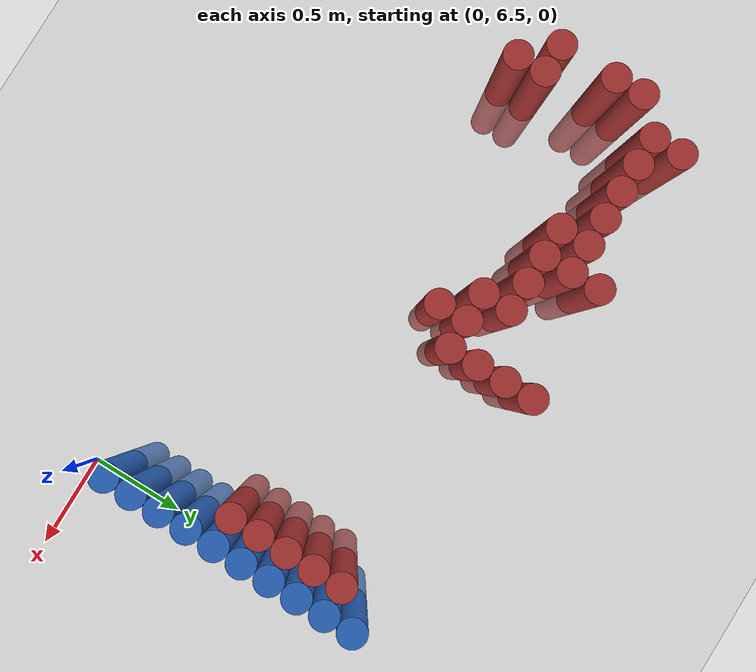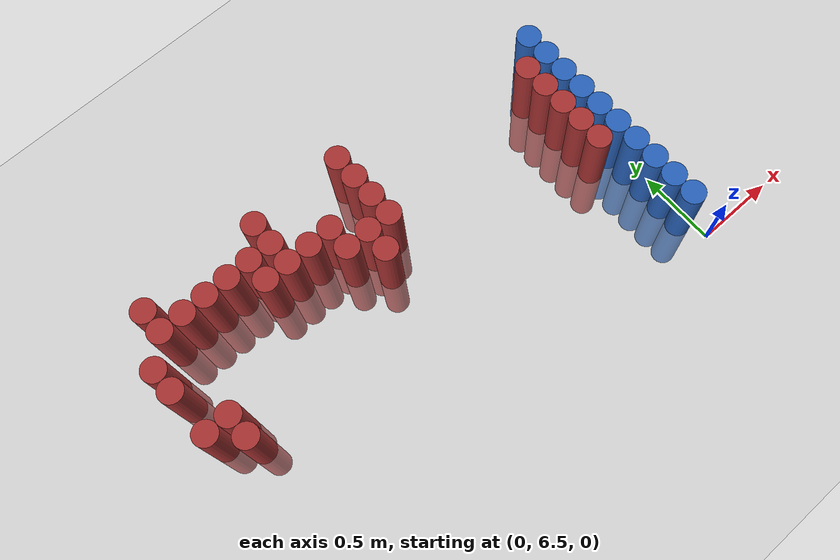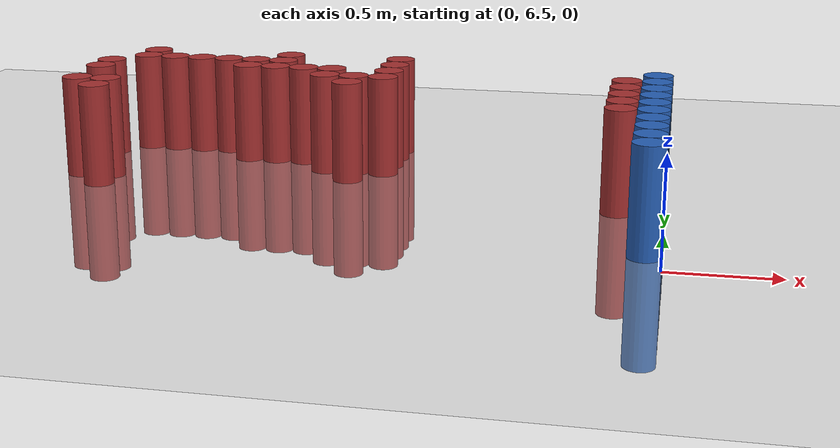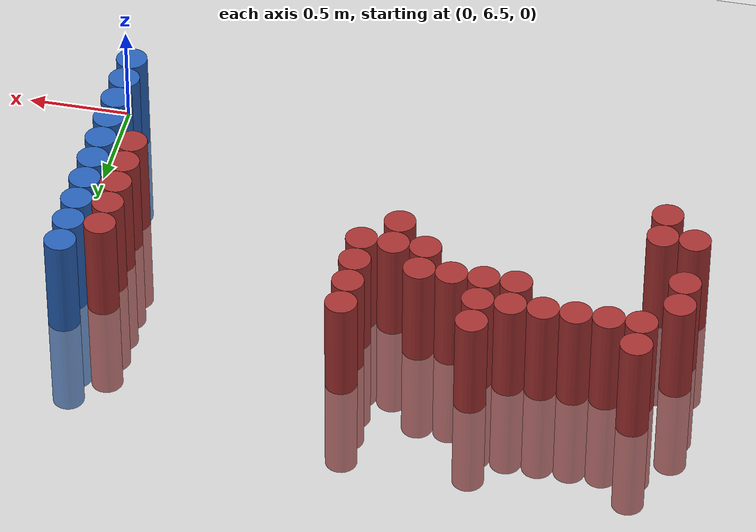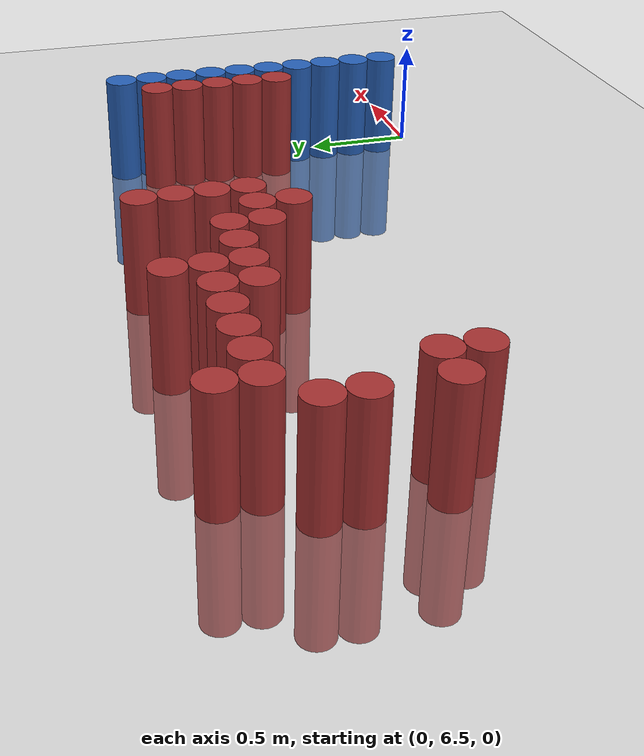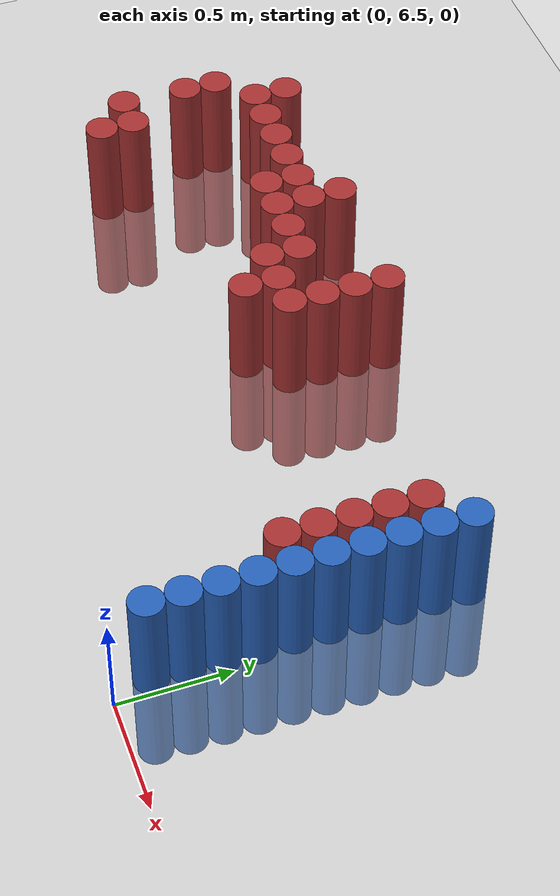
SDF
<sdf version="1.6">
 <world name="default">
  <model name="ground_plane">
   <static>1</static>
   <link name="link">
    <collision name="collision">
     <geometry><plane><normal>0 0 1</normal><size>100 100</size></plane></geometry>
     <surface><friction><ode><mu>100</mu><mu2>50</mu2></ode></friction></surface>
    </collision>
    <visual name="visual">
     <cast_shadows>0</cast_shadows>
     <geometry><plane><normal>0 0 1</normal><size>100 100</size></plane></geometry>
     <material>
      <script><uri>file://media/materials/scripts/gazebo.material</uri><name>Gazebo/Grey</name></script>
     </material>
    </visual>
   </link>
  </model>
  <model name="unit_cylinder_197">
   <static>1</static>
   <pose>-2.925000 7.425000 0.000000 0.000000 0.000000 0.000000</pose>
   <link name="link">
    <inertial>
     <mass>1</mass>
     <inertia><ixx>0.145833</ixx><ixy>0</ixy><ixz>0</ixz><iyy>0.145833</iyy><iyz>0</iyz><izz>0.125</izz></inertia>
    </inertial>
    <collision name="collision">
     <geometry><cylinder><radius>0.075000</radius><length>1</length></cylinder></geometry>
    </collision>
    <visual name="visual">
     <geometry><cylinder><radius>0.075000</radius><length>1</length></cylinder></geometry>
     <material>
      <ambient>0.648000 0.192000 0.192000 1</ambient>
      <diffuse>0.648000 0.192000 0.192000 1</diffuse>
     </material>
     <material>
      <script><name>Gazebo/Grey</name><uri>file://media/materials/scripts/gazebo.material</uri></script>
     </material>
    </visual>
    <sensor name="sensor_contact" type="contact"><contact><collision>collision</collision></contact></sensor>
   </link>
   <plugin filename="gz-sim-touchplugin-system" name="gz::sim::systems::TouchPlugin">
    <target>robot</target>
    <namespace>robot</namespace>
    <time>0.001</time>
    <enabled>true</enabled>
   </plugin>
  </model>
  <model name="unit_cylinder_198">
   <static>1</static>
   <pose>-2.925000 7.725000 0.000000 0.000000 0.000000 0.000000</pose>
   <link name="link">
    <inertial>
     <mass>1</mass>
     <inertia><ixx>0.145833</ixx><ixy>0</ixy><ixz>0</ixz><iyy>0.145833</iyy><iyz>0</iyz><izz>0.125</izz></inertia>
    </inertial>
    <collision name="collision">
     <geometry><cylinder><radius>0.075000</radius><length>1</length></cylinder></geometry>
    </collision>
    <visual name="visual">
     <geometry><cylinder><radius>0.075000</radius><length>1</length></cylinder></geometry>
     <material>
      <ambient>0.648000 0.192000 0.192000 1</ambient>
      <diffuse>0.648000 0.192000 0.192000 1</diffuse>
     </material>
     <material>
      <script><name>Gazebo/Grey</name><uri>file://media/materials/scripts/gazebo.material</uri></script>
     </material>
    </visual>
    <sensor name="sensor_contact" type="contact"><contact><collision>collision</collision></contact></sensor>
   </link>
   <plugin filename="gz-sim-touchplugin-system" name="gz::sim::systems::TouchPlugin">
    <target>robot</target>
    <namespace>robot</namespace>
    <time>0.001</time>
    <enabled>true</enabled>
   </plugin>
  </model>
  <model name="unit_cylinder_199">
   <static>1</static>
   <pose>-2.925000 7.875000 0.000000 0.000000 0.000000 0.000000</pose>
   <link name="link">
    <inertial>
     <mass>1</mass>
     <inertia><ixx>0.145833</ixx><ixy>0</ixy><ixz>0</ixz><iyy>0.145833</iyy><iyz>0</iyz><izz>0.125</izz></inertia>
    </inertial>
    <collision name="collision">
     <geometry><cylinder><radius>0.075000</radius><length>1</length></cylinder></geometry>
    </collision>
    <visual name="visual">
     <geometry><cylinder><radius>0.075000</radius><length>1</length></cylinder></geometry>
     <material>
      <ambient>0.648000 0.192000 0.192000 1</ambient>
      <diffuse>0.648000 0.192000 0.192000 1</diffuse>
     </material>
     <material>
      <script><name>Gazebo/Grey</name><uri>file://media/materials/scripts/gazebo.material</uri></script>
     </material>
    </visual>
    <sensor name="sensor_contact" type="contact"><contact><collision>collision</collision></contact></sensor>
   </link>
   <plugin filename="gz-sim-touchplugin-system" name="gz::sim::systems::TouchPlugin">
    <target>robot</target>
    <namespace>robot</namespace>
    <time>0.001</time>
    <enabled>true</enabled>
   </plugin>
  </model>
  <model name="unit_cylinder_201">
   <static>1</static>
   <pose>-2.775000 7.275000 0.000000 0.000000 0.000000 0.000000</pose>
   <link name="link">
    <inertial>
     <mass>1</mass>
     <inertia><ixx>0.145833</ixx><ixy>0</ixy><ixz>0</ixz><iyy>0.145833</iyy><iyz>0</iyz><izz>0.125</izz></inertia>
    </inertial>
    <collision name="collision">
     <geometry><cylinder><radius>0.075000</radius><length>1</length></cylinder></geometry>
    </collision>
    <visual name="visual">
     <geometry><cylinder><radius>0.075000</radius><length>1</length></cylinder></geometry>
     <material>
      <ambient>0.648000 0.192000 0.192000 1</ambient>
      <diffuse>0.648000 0.192000 0.192000 1</diffuse>
     </material>
     <material>
      <script><name>Gazebo/Grey</name><uri>file://media/materials/scripts/gazebo.material</uri></script>
     </material>
    </visual>
    <sensor name="sensor_contact" type="contact"><contact><collision>collision</collision></contact></sensor>
   </link>
   <plugin filename="gz-sim-touchplugin-system" name="gz::sim::systems::TouchPlugin">
    <target>robot</target>
    <namespace>robot</namespace>
    <time>0.001</time>
    <enabled>true</enabled>
   </plugin>
  </model>
  <model name="unit_cylinder_202">
   <static>1</static>
   <pose>-2.775000 7.425000 0.000000 0.000000 0.000000 0.000000</pose>
   <link name="link">
    <inertial>
     <mass>1</mass>
     <inertia><ixx>0.145833</ixx><ixy>0</ixy><ixz>0</ixz><iyy>0.145833</iyy><iyz>0</iyz><izz>0.125</izz></inertia>
    </inertial>
    <collision name="collision">
     <geometry><cylinder><radius>0.075000</radius><length>1</length></cylinder></geometry>
    </collision>
    <visual name="visual">
     <geometry><cylinder><radius>0.075000</radius><length>1</length></cylinder></geometry>
     <material>
      <ambient>0.648000 0.192000 0.192000 1</ambient>
      <diffuse>0.648000 0.192000 0.192000 1</diffuse>
     </material>
     <material>
      <script><name>Gazebo/Grey</name><uri>file://media/materials/scripts/gazebo.material</uri></script>
     </material>
    </visual>
    <sensor name="sensor_contact" type="contact"><contact><collision>collision</collision></contact></sensor>
   </link>
   <plugin filename="gz-sim-touchplugin-system" name="gz::sim::systems::TouchPlugin">
    <target>robot</target>
    <namespace>robot</namespace>
    <time>0.001</time>
    <enabled>true</enabled>
   </plugin>
  </model>
  <model name="unit_cylinder_203">
   <static>1</static>
   <pose>-2.775000 8.025000 0.000000 0.000000 0.000000 0.000000</pose>
   <link name="link">
    <inertial>
     <mass>1</mass>
     <inertia><ixx>0.145833</ixx><ixy>0</ixy><ixz>0</ixz><iyy>0.145833</iyy><iyz>0</iyz><izz>0.125</izz></inertia>
    </inertial>
    <collision name="collision">
     <geometry><cylinder><radius>0.075000</radius><length>1</length></cylinder></geometry>
    </collision>
    <visual name="visual">
     <geometry><cylinder><radius>0.075000</radius><length>1</length></cylinder></geometry>
     <material>
      <ambient>0.648000 0.192000 0.192000 1</ambient>
      <diffuse>0.648000 0.192000 0.192000 1</diffuse>
     </material>
     <material>
      <script><name>Gazebo/Grey</name><uri>file://media/materials/scripts/gazebo.material</uri></script>
     </material>
    </visual>
    <sensor name="sensor_contact" type="contact"><contact><collision>collision</collision></contact></sensor>
   </link>
   <plugin filename="gz-sim-touchplugin-system" name="gz::sim::systems::TouchPlugin">
    <target>robot</target>
    <namespace>robot</namespace>
    <time>0.001</time>
    <enabled>true</enabled>
   </plugin>
  </model>
  <model name="unit_cylinder_204">
   <static>1</static>
   <pose>-2.775000 8.175000 0.000000 0.000000 0.000000 0.000000</pose>
   <link name="link">
    <inertial>
     <mass>1</mass>
     <inertia><ixx>0.145833</ixx><ixy>0</ixy><ixz>0</ixz><iyy>0.145833</iyy><iyz>0</iyz><izz>0.125</izz></inertia>
    </inertial>
    <collision name="collision">
     <geometry><cylinder><radius>0.075000</radius><length>1</length></cylinder></geometry>
    </collision>
    <visual name="visual">
     <geometry><cylinder><radius>0.075000</radius><length>1</length></cylinder></geometry>
     <material>
      <ambient>0.648000 0.192000 0.192000 1</ambient>
      <diffuse>0.648000 0.192000 0.192000 1</diffuse>
     </material>
     <material>
      <script><name>Gazebo/Grey</name><uri>file://media/materials/scripts/gazebo.material</uri></script>
     </material>
    </visual>
    <sensor name="sensor_contact" type="contact"><contact><collision>collision</collision></contact></sensor>
   </link>
   <plugin filename="gz-sim-touchplugin-system" name="gz::sim::systems::TouchPlugin">
    <target>robot</target>
    <namespace>robot</namespace>
    <time>0.001</time>
    <enabled>true</enabled>
   </plugin>
  </model>
  <model name="unit_cylinder_210">
   <static>1</static>
   <pose>-2.625000 8.025000 0.000000 0.000000 0.000000 0.000000</pose>
   <link name="link">
    <inertial>
     <mass>1</mass>
     <inertia><ixx>0.145833</ixx><ixy>0</ixy><ixz>0</ixz><iyy>0.145833</iyy><iyz>0</iyz><izz>0.125</izz></inertia>
    </inertial>
    <collision name="collision">
     <geometry><cylinder><radius>0.075000</radius><length>1</length></cylinder></geometry>
    </collision>
    <visual name="visual">
     <geometry><cylinder><radius>0.075000</radius><length>1</length></cylinder></geometry>
     <material>
      <ambient>0.648000 0.192000 0.192000 1</ambient>
      <diffuse>0.648000 0.192000 0.192000 1</diffuse>
     </material>
     <material>
      <script><name>Gazebo/Grey</name><uri>file://media/materials/scripts/gazebo.material</uri></script>
     </material>
    </visual>
    <sensor name="sensor_contact" type="contact"><contact><collision>collision</collision></contact></sensor>
   </link>
   <plugin filename="gz-sim-touchplugin-system" name="gz::sim::systems::TouchPlugin">
    <target>robot</target>
    <namespace>robot</namespace>
    <time>0.001</time>
    <enabled>true</enabled>
   </plugin>
  </model>
  <model name="unit_cylinder_221">
   <static>1</static>
   <pose>-2.475000 8.025000 0.000000 0.000000 0.000000 0.000000</pose>
   <link name="link">
    <inertial>
     <mass>1</mass>
     <inertia><ixx>0.145833</ixx><ixy>0</ixy><ixz>0</ixz><iyy>0.145833</iyy><iyz>0</iyz><izz>0.125</izz></inertia>
    </inertial>
    <collision name="collision">
     <geometry><cylinder><radius>0.075000</radius><length>1</length></cylinder></geometry>
    </collision>
    <visual name="visual">
     <geometry><cylinder><radius>0.075000</radius><length>1</length></cylinder></geometry>
     <material>
      <ambient>0.648000 0.192000 0.192000 1</ambient>
      <diffuse>0.648000 0.192000 0.192000 1</diffuse>
     </material>
     <material>
      <script><name>Gazebo/Grey</name><uri>file://media/materials/scripts/gazebo.material</uri></script>
     </material>
    </visual>
    <sensor name="sensor_contact" type="contact"><contact><collision>collision</collision></contact></sensor>
   </link>
   <plugin filename="gz-sim-touchplugin-system" name="gz::sim::systems::TouchPlugin">
    <target>robot</target>
    <namespace>robot</namespace>
    <time>0.001</time>
    <enabled>true</enabled>
   </plugin>
  </model>
  <model name="unit_cylinder_229">
   <static>1</static>
   <pose>-2.325000 8.025000 0.000000 0.000000 0.000000 0.000000</pose>
   <link name="link">
    <inertial>
     <mass>1</mass>
     <inertia><ixx>0.145833</ixx><ixy>0</ixy><ixz>0</ixz><iyy>0.145833</iyy><iyz>0</iyz><izz>0.125</izz></inertia>
    </inertial>
    <collision name="collision">
     <geometry><cylinder><radius>0.075000</radius><length>1</length></cylinder></geometry>
    </collision>
    <visual name="visual">
     <geometry><cylinder><radius>0.075000</radius><length>1</length></cylinder></geometry>
     <material>
      <ambient>0.648000 0.192000 0.192000 1</ambient>
      <diffuse>0.648000 0.192000 0.192000 1</diffuse>
     </material>
     <material>
      <script><name>Gazebo/Grey</name><uri>file://media/materials/scripts/gazebo.material</uri></script>
     </material>
    </visual>
    <sensor name="sensor_contact" type="contact"><contact><collision>collision</collision></contact></sensor>
   </link>
   <plugin filename="gz-sim-touchplugin-system" name="gz::sim::systems::TouchPlugin">
    <target>robot</target>
    <namespace>robot</namespace>
    <time>0.001</time>
    <enabled>true</enabled>
   </plugin>
  </model>
  <model name="unit_cylinder_236">
   <static>1</static>
   <pose>-2.175000 7.875000 0.000000 0.000000 0.000000 0.000000</pose>
   <link name="link">
    <inertial>
     <mass>1</mass>
     <inertia><ixx>0.145833</ixx><ixy>0</ixy><ixz>0</ixz><iyy>0.145833</iyy><iyz>0</iyz><izz>0.125</izz></inertia>
    </inertial>
    <collision name="collision">
     <geometry><cylinder><radius>0.075000</radius><length>1</length></cylinder></geometry>
    </collision>
    <visual name="visual">
     <geometry><cylinder><radius>0.075000</radius><length>1</length></cylinder></geometry>
     <material>
      <ambient>0.648000 0.192000 0.192000 1</ambient>
      <diffuse>0.648000 0.192000 0.192000 1</diffuse>
     </material>
     <material>
      <script><name>Gazebo/Grey</name><uri>file://media/materials/scripts/gazebo.material</uri></script>
     </material>
    </visual>
    <sensor name="sensor_contact" type="contact"><contact><collision>collision</collision></contact></sensor>
   </link>
   <plugin filename="gz-sim-touchplugin-system" name="gz::sim::systems::TouchPlugin">
    <target>robot</target>
    <namespace>robot</namespace>
    <time>0.001</time>
    <enabled>true</enabled>
   </plugin>
  </model>
  <model name="unit_cylinder_237">
   <static>1</static>
   <pose>-2.175000 8.025000 0.000000 0.000000 0.000000 0.000000</pose>
   <link name="link">
    <inertial>
     <mass>1</mass>
     <inertia><ixx>0.145833</ixx><ixy>0</ixy><ixz>0</ixz><iyy>0.145833</iyy><iyz>0</iyz><izz>0.125</izz></inertia>
    </inertial>
    <collision name="collision">
     <geometry><cylinder><radius>0.075000</radius><length>1</length></cylinder></geometry>
    </collision>
    <visual name="visual">
     <geometry><cylinder><radius>0.075000</radius><length>1</length></cylinder></geometry>
     <material>
      <ambient>0.648000 0.192000 0.192000 1</ambient>
      <diffuse>0.648000 0.192000 0.192000 1</diffuse>
     </material>
     <material>
      <script><name>Gazebo/Grey</name><uri>file://media/materials/scripts/gazebo.material</uri></script>
     </material>
    </visual>
    <sensor name="sensor_contact" type="contact"><contact><collision>collision</collision></contact></sensor>
   </link>
   <plugin filename="gz-sim-touchplugin-system" name="gz::sim::systems::TouchPlugin">
    <target>robot</target>
    <namespace>robot</namespace>
    <time>0.001</time>
    <enabled>true</enabled>
   </plugin>
  </model>
  <model name="unit_cylinder_241">
   <static>1</static>
   <pose>-2.025000 7.875000 0.000000 0.000000 0.000000 0.000000</pose>
   <link name="link">
    <inertial>
     <mass>1</mass>
     <inertia><ixx>0.145833</ixx><ixy>0</ixy><ixz>0</ixz><iyy>0.145833</iyy><iyz>0</iyz><izz>0.125</izz></inertia>
    </inertial>
    <collision name="collision">
     <geometry><cylinder><radius>0.075000</radius><length>1</length></cylinder></geometry>
    </collision>
    <visual name="visual">
     <geometry><cylinder><radius>0.075000</radius><length>1</length></cylinder></geometry>
     <material>
      <ambient>0.648000 0.192000 0.192000 1</ambient>
      <diffuse>0.648000 0.192000 0.192000 1</diffuse>
     </material>
     <material>
      <script><name>Gazebo/Grey</name><uri>file://media/materials/scripts/gazebo.material</uri></script>
     </material>
    </visual>
    <sensor name="sensor_contact" type="contact"><contact><collision>collision</collision></contact></sensor>
   </link>
   <plugin filename="gz-sim-touchplugin-system" name="gz::sim::systems::TouchPlugin">
    <target>robot</target>
    <namespace>robot</namespace>
    <time>0.001</time>
    <enabled>true</enabled>
   </plugin>
  </model>
  <model name="unit_cylinder_242">
   <static>1</static>
   <pose>-2.025000 8.025000 0.000000 0.000000 0.000000 0.000000</pose>
   <link name="link">
    <inertial>
     <mass>1</mass>
     <inertia><ixx>0.145833</ixx><ixy>0</ixy><ixz>0</ixz><iyy>0.145833</iyy><iyz>0</iyz><izz>0.125</izz></inertia>
    </inertial>
    <collision name="collision">
     <geometry><cylinder><radius>0.075000</radius><length>1</length></cylinder></geometry>
    </collision>
    <visual name="visual">
     <geometry><cylinder><radius>0.075000</radius><length>1</length></cylinder></geometry>
     <material>
      <ambient>0.648000 0.192000 0.192000 1</ambient>
      <diffuse>0.648000 0.192000 0.192000 1</diffuse>
     </material>
     <material>
      <script><name>Gazebo/Grey</name><uri>file://media/materials/scripts/gazebo.material</uri></script>
     </material>
    </visual>
    <sensor name="sensor_contact" type="contact"><contact><collision>collision</collision></contact></sensor>
   </link>
   <plugin filename="gz-sim-touchplugin-system" name="gz::sim::systems::TouchPlugin">
    <target>robot</target>
    <namespace>robot</namespace>
    <time>0.001</time>
    <enabled>true</enabled>
   </plugin>
  </model>
  <model name="unit_cylinder_243">
   <static>1</static>
   <pose>-2.025000 8.175000 0.000000 0.000000 0.000000 0.000000</pose>
   <link name="link">
    <inertial>
     <mass>1</mass>
     <inertia><ixx>0.145833</ixx><ixy>0</ixy><ixz>0</ixz><iyy>0.145833</iyy><iyz>0</iyz><izz>0.125</izz></inertia>
    </inertial>
    <collision name="collision">
     <geometry><cylinder><radius>0.075000</radius><length>1</length></cylinder></geometry>
    </collision>
    <visual name="visual">
     <geometry><cylinder><radius>0.075000</radius><length>1</length></cylinder></geometry>
     <material>
      <ambient>0.648000 0.192000 0.192000 1</ambient>
      <diffuse>0.648000 0.192000 0.192000 1</diffuse>
     </material>
     <material>
      <script><name>Gazebo/Grey</name><uri>file://media/materials/scripts/gazebo.material</uri></script>
     </material>
    </visual>
    <sensor name="sensor_contact" type="contact"><contact><collision>collision</collision></contact></sensor>
   </link>
   <plugin filename="gz-sim-touchplugin-system" name="gz::sim::systems::TouchPlugin">
    <target>robot</target>
    <namespace>robot</namespace>
    <time>0.001</time>
    <enabled>true</enabled>
   </plugin>
  </model>
  <model name="unit_cylinder_246">
   <static>1</static>
   <pose>-1.875000 7.875000 0.000000 0.000000 0.000000 0.000000</pose>
   <link name="link">
    <inertial>
     <mass>1</mass>
     <inertia><ixx>0.145833</ixx><ixy>0</ixy><ixz>0</ixz><iyy>0.145833</iyy><iyz>0</iyz><izz>0.125</izz></inertia>
    </inertial>
    <collision name="collision">
     <geometry><cylinder><radius>0.075000</radius><length>1</length></cylinder></geometry>
    </collision>
    <visual name="visual">
     <geometry><cylinder><radius>0.075000</radius><length>1</length></cylinder></geometry>
     <material>
      <ambient>0.648000 0.192000 0.192000 1</ambient>
      <diffuse>0.648000 0.192000 0.192000 1</diffuse>
     </material>
     <material>
      <script><name>Gazebo/Grey</name><uri>file://media/materials/scripts/gazebo.material</uri></script>
     </material>
    </visual>
    <sensor name="sensor_contact" type="contact"><contact><collision>collision</collision></contact></sensor>
   </link>
   <plugin filename="gz-sim-touchplugin-system" name="gz::sim::systems::TouchPlugin">
    <target>robot</target>
    <namespace>robot</namespace>
    <time>0.001</time>
    <enabled>true</enabled>
   </plugin>
  </model>
  <model name="unit_cylinder_249">
   <static>1</static>
   <pose>-1.725000 7.725000 0.000000 0.000000 0.000000 0.000000</pose>
   <link name="link">
    <inertial>
     <mass>1</mass>
     <inertia><ixx>0.145833</ixx><ixy>0</ixy><ixz>0</ixz><iyy>0.145833</iyy><iyz>0</iyz><izz>0.125</izz></inertia>
    </inertial>
    <collision name="collision">
     <geometry><cylinder><radius>0.075000</radius><length>1</length></cylinder></geometry>
    </collision>
    <visual name="visual">
     <geometry><cylinder><radius>0.075000</radius><length>1</length></cylinder></geometry>
     <material>
      <ambient>0.648000 0.192000 0.192000 1</ambient>
      <diffuse>0.648000 0.192000 0.192000 1</diffuse>
     </material>
     <material>
      <script><name>Gazebo/Grey</name><uri>file://media/materials/scripts/gazebo.material</uri></script>
     </material>
    </visual>
    <sensor name="sensor_contact" type="contact"><contact><collision>collision</collision></contact></sensor>
   </link>
   <plugin filename="gz-sim-touchplugin-system" name="gz::sim::systems::TouchPlugin">
    <target>robot</target>
    <namespace>robot</namespace>
    <time>0.001</time>
    <enabled>true</enabled>
   </plugin>
  </model>
  <model name="unit_cylinder_250">
   <static>1</static>
   <pose>-1.725000 7.875000 0.000000 0.000000 0.000000 0.000000</pose>
   <link name="link">
    <inertial>
     <mass>1</mass>
     <inertia><ixx>0.145833</ixx><ixy>0</ixy><ixz>0</ixz><iyy>0.145833</iyy><iyz>0</iyz><izz>0.125</izz></inertia>
    </inertial>
    <collision name="collision">
     <geometry><cylinder><radius>0.075000</radius><length>1</length></cylinder></geometry>
    </collision>
    <visual name="visual">
     <geometry><cylinder><radius>0.075000</radius><length>1</length></cylinder></geometry>
     <material>
      <ambient>0.648000 0.192000 0.192000 1</ambient>
      <diffuse>0.648000 0.192000 0.192000 1</diffuse>
     </material>
     <material>
      <script><name>Gazebo/Grey</name><uri>file://media/materials/scripts/gazebo.material</uri></script>
     </material>
    </visual>
    <sensor name="sensor_contact" type="contact"><contact><collision>collision</collision></contact></sensor>
   </link>
   <plugin filename="gz-sim-touchplugin-system" name="gz::sim::systems::TouchPlugin">
    <target>robot</target>
    <namespace>robot</namespace>
    <time>0.001</time>
    <enabled>true</enabled>
   </plugin>
  </model>
  <model name="unit_cylinder_252">
   <static>1</static>
   <pose>-1.575000 7.575000 0.000000 0.000000 0.000000 0.000000</pose>
   <link name="link">
    <inertial>
     <mass>1</mass>
     <inertia><ixx>0.145833</ixx><ixy>0</ixy><ixz>0</ixz><iyy>0.145833</iyy><iyz>0</iyz><izz>0.125</izz></inertia>
    </inertial>
    <collision name="collision">
     <geometry><cylinder><radius>0.075000</radius><length>1</length></cylinder></geometry>
    </collision>
    <visual name="visual">
     <geometry><cylinder><radius>0.075000</radius><length>1</length></cylinder></geometry>
     <material>
      <ambient>0.648000 0.192000 0.192000 1</ambient>
      <diffuse>0.648000 0.192000 0.192000 1</diffuse>
     </material>
     <material>
      <script><name>Gazebo/Grey</name><uri>file://media/materials/scripts/gazebo.material</uri></script>
     </material>
    </visual>
    <sensor name="sensor_contact" type="contact"><contact><collision>collision</collision></contact></sensor>
   </link>
   <plugin filename="gz-sim-touchplugin-system" name="gz::sim::systems::TouchPlugin">
    <target>robot</target>
    <namespace>robot</namespace>
    <time>0.001</time>
    <enabled>true</enabled>
   </plugin>
  </model>
  <model name="unit_cylinder_253">
   <static>1</static>
   <pose>-1.575000 7.725000 0.000000 0.000000 0.000000 0.000000</pose>
   <link name="link">
    <inertial>
     <mass>1</mass>
     <inertia><ixx>0.145833</ixx><ixy>0</ixy><ixz>0</ixz><iyy>0.145833</iyy><iyz>0</iyz><izz>0.125</izz></inertia>
    </inertial>
    <collision name="collision">
     <geometry><cylinder><radius>0.075000</radius><length>1</length></cylinder></geometry>
    </collision>
    <visual name="visual">
     <geometry><cylinder><radius>0.075000</radius><length>1</length></cylinder></geometry>
     <material>
      <ambient>0.648000 0.192000 0.192000 1</ambient>
      <diffuse>0.648000 0.192000 0.192000 1</diffuse>
     </material>
     <material>
      <script><name>Gazebo/Grey</name><uri>file://media/materials/scripts/gazebo.material</uri></script>
     </material>
    </visual>
    <sensor name="sensor_contact" type="contact"><contact><collision>collision</collision></contact></sensor>
   </link>
   <plugin filename="gz-sim-touchplugin-system" name="gz::sim::systems::TouchPlugin">
    <target>robot</target>
    <namespace>robot</namespace>
    <time>0.001</time>
    <enabled>true</enabled>
   </plugin>
  </model>
  <model name="unit_cylinder_255">
   <static>1</static>
   <pose>-1.425000 7.725000 0.000000 0.000000 0.000000 0.000000</pose>
   <link name="link">
    <inertial>
     <mass>1</mass>
     <inertia><ixx>0.145833</ixx><ixy>0</ixy><ixz>0</ixz><iyy>0.145833</iyy><iyz>0</iyz><izz>0.125</izz></inertia>
    </inertial>
    <collision name="collision">
     <geometry><cylinder><radius>0.075000</radius><length>1</length></cylinder></geometry>
    </collision>
    <visual name="visual">
     <geometry><cylinder><radius>0.075000</radius><length>1</length></cylinder></geometry>
     <material>
      <ambient>0.648000 0.192000 0.192000 1</ambient>
      <diffuse>0.648000 0.192000 0.192000 1</diffuse>
     </material>
     <material>
      <script><name>Gazebo/Grey</name><uri>file://media/materials/scripts/gazebo.material</uri></script>
     </material>
    </visual>
    <sensor name="sensor_contact" type="contact"><contact><collision>collision</collision></contact></sensor>
   </link>
   <plugin filename="gz-sim-touchplugin-system" name="gz::sim::systems::TouchPlugin">
    <target>robot</target>
    <namespace>robot</namespace>
    <time>0.001</time>
    <enabled>true</enabled>
   </plugin>
  </model>
  <model name="unit_cylinder_256">
   <static>1</static>
   <pose>-1.425000 7.875000 0.000000 0.000000 0.000000 0.000000</pose>
   <link name="link">
    <inertial>
     <mass>1</mass>
     <inertia><ixx>0.145833</ixx><ixy>0</ixy><ixz>0</ixz><iyy>0.145833</iyy><iyz>0</iyz><izz>0.125</izz></inertia>
    </inertial>
    <collision name="collision">
     <geometry><cylinder><radius>0.075000</radius><length>1</length></cylinder></geometry>
    </collision>
    <visual name="visual">
     <geometry><cylinder><radius>0.075000</radius><length>1</length></cylinder></geometry>
     <material>
      <ambient>0.648000 0.192000 0.192000 1</ambient>
      <diffuse>0.648000 0.192000 0.192000 1</diffuse>
     </material>
     <material>
      <script><name>Gazebo/Grey</name><uri>file://media/materials/scripts/gazebo.material</uri></script>
     </material>
    </visual>
    <sensor name="sensor_contact" type="contact"><contact><collision>collision</collision></contact></sensor>
   </link>
   <plugin filename="gz-sim-touchplugin-system" name="gz::sim::systems::TouchPlugin">
    <target>robot</target>
    <namespace>robot</namespace>
    <time>0.001</time>
    <enabled>true</enabled>
   </plugin>
  </model>
  <model name="unit_cylinder_257">
   <static>1</static>
   <pose>-1.425000 8.025000 0.000000 0.000000 0.000000 0.000000</pose>
   <link name="link">
    <inertial>
     <mass>1</mass>
     <inertia><ixx>0.145833</ixx><ixy>0</ixy><ixz>0</ixz><iyy>0.145833</iyy><iyz>0</iyz><izz>0.125</izz></inertia>
    </inertial>
    <collision name="collision">
     <geometry><cylinder><radius>0.075000</radius><length>1</length></cylinder></geometry>
    </collision>
    <visual name="visual">
     <geometry><cylinder><radius>0.075000</radius><length>1</length></cylinder></geometry>
     <material>
      <ambient>0.648000 0.192000 0.192000 1</ambient>
      <diffuse>0.648000 0.192000 0.192000 1</diffuse>
     </material>
     <material>
      <script><name>Gazebo/Grey</name><uri>file://media/materials/scripts/gazebo.material</uri></script>
     </material>
    </visual>
    <sensor name="sensor_contact" type="contact"><contact><collision>collision</collision></contact></sensor>
   </link>
   <plugin filename="gz-sim-touchplugin-system" name="gz::sim::systems::TouchPlugin">
    <target>robot</target>
    <namespace>robot</namespace>
    <time>0.001</time>
    <enabled>true</enabled>
   </plugin>
  </model>
  <model name="unit_cylinder_258">
   <static>1</static>
   <pose>-1.425000 8.175000 0.000000 0.000000 0.000000 0.000000</pose>
   <link name="link">
    <inertial>
     <mass>1</mass>
     <inertia><ixx>0.145833</ixx><ixy>0</ixy><ixz>0</ixz><iyy>0.145833</iyy><iyz>0</iyz><izz>0.125</izz></inertia>
    </inertial>
    <collision name="collision">
     <geometry><cylinder><radius>0.075000</radius><length>1</length></cylinder></geometry>
    </collision>
    <visual name="visual">
     <geometry><cylinder><radius>0.075000</radius><length>1</length></cylinder></geometry>
     <material>
      <ambient>0.648000 0.192000 0.192000 1</ambient>
      <diffuse>0.648000 0.192000 0.192000 1</diffuse>
     </material>
     <material>
      <script><name>Gazebo/Grey</name><uri>file://media/materials/scripts/gazebo.material</uri></script>
     </material>
    </visual>
    <sensor name="sensor_contact" type="contact"><contact><collision>collision</collision></contact></sensor>
   </link>
   <plugin filename="gz-sim-touchplugin-system" name="gz::sim::systems::TouchPlugin">
    <target>robot</target>
    <namespace>robot</namespace>
    <time>0.001</time>
    <enabled>true</enabled>
   </plugin>
  </model>
  <model name="unit_cylinder_273">
   <static>1</static>
   <pose>-0.225000 7.275000 0.000000 0.000000 0.000000 0.000000</pose>
   <link name="link">
    <inertial>
     <mass>1</mass>
     <inertia><ixx>0.145833</ixx><ixy>0</ixy><ixz>0</ixz><iyy>0.145833</iyy><iyz>0</iyz><izz>0.125</izz></inertia>
    </inertial>
    <collision name="collision">
     <geometry><cylinder><radius>0.075000</radius><length>1</length></cylinder></geometry>
    </collision>
    <visual name="visual">
     <geometry><cylinder><radius>0.075000</radius><length>1</length></cylinder></geometry>
     <material>
      <ambient>0.648000 0.192000 0.192000 1</ambient>
      <diffuse>0.648000 0.192000 0.192000 1</diffuse>
     </material>
     <material>
      <script><name>Gazebo/Grey</name><uri>file://media/materials/scripts/gazebo.material</uri></script>
     </material>
    </visual>
    <sensor name="sensor_contact" type="contact"><contact><collision>collision</collision></contact></sensor>
   </link>
   <plugin filename="gz-sim-touchplugin-system" name="gz::sim::systems::TouchPlugin">
    <target>robot</target>
    <namespace>robot</namespace>
    <time>0.001</time>
    <enabled>true</enabled>
   </plugin>
  </model>
  <model name="unit_cylinder_274">
   <static>1</static>
   <pose>-0.225000 7.425000 0.000000 0.000000 0.000000 0.000000</pose>
   <link name="link">
    <inertial>
     <mass>1</mass>
     <inertia><ixx>0.145833</ixx><ixy>0</ixy><ixz>0</ixz><iyy>0.145833</iyy><iyz>0</iyz><izz>0.125</izz></inertia>
    </inertial>
    <collision name="collision">
     <geometry><cylinder><radius>0.075000</radius><length>1</length></cylinder></geometry>
    </collision>
    <visual name="visual">
     <geometry><cylinder><radius>0.075000</radius><length>1</length></cylinder></geometry>
     <material>
      <ambient>0.648000 0.192000 0.192000 1</ambient>
      <diffuse>0.648000 0.192000 0.192000 1</diffuse>
     </material>
     <material>
      <script><name>Gazebo/Grey</name><uri>file://media/materials/scripts/gazebo.material</uri></script>
     </material>
    </visual>
    <sensor name="sensor_contact" type="contact"><contact><collision>collision</collision></contact></sensor>
   </link>
   <plugin filename="gz-sim-touchplugin-system" name="gz::sim::systems::TouchPlugin">
    <target>robot</target>
    <namespace>robot</namespace>
    <time>0.001</time>
    <enabled>true</enabled>
   </plugin>
  </model>
  <model name="unit_cylinder_275">
   <static>1</static>
   <pose>-0.225000 7.575000 0.000000 0.000000 0.000000 0.000000</pose>
   <link name="link">
    <inertial>
     <mass>1</mass>
     <inertia><ixx>0.145833</ixx><ixy>0</ixy><ixz>0</ixz><iyy>0.145833</iyy><iyz>0</iyz><izz>0.125</izz></inertia>
    </inertial>
    <collision name="collision">
     <geometry><cylinder><radius>0.075000</radius><length>1</length></cylinder></geometry>
    </collision>
    <visual name="visual">
     <geometry><cylinder><radius>0.075000</radius><length>1</length></cylinder></geometry>
     <material>
      <ambient>0.648000 0.192000 0.192000 1</ambient>
      <diffuse>0.648000 0.192000 0.192000 1</diffuse>
     </material>
     <material>
      <script><name>Gazebo/Grey</name><uri>file://media/materials/scripts/gazebo.material</uri></script>
     </material>
    </visual>
    <sensor name="sensor_contact" type="contact"><contact><collision>collision</collision></contact></sensor>
   </link>
   <plugin filename="gz-sim-touchplugin-system" name="gz::sim::systems::TouchPlugin">
    <target>robot</target>
    <namespace>robot</namespace>
    <time>0.001</time>
    <enabled>true</enabled>
   </plugin>
  </model>
  <model name="unit_cylinder_276">
   <static>1</static>
   <pose>-0.225000 7.725000 0.000000 0.000000 0.000000 0.000000</pose>
   <link name="link">
    <inertial>
     <mass>1</mass>
     <inertia><ixx>0.145833</ixx><ixy>0</ixy><ixz>0</ixz><iyy>0.145833</iyy><iyz>0</iyz><izz>0.125</izz></inertia>
    </inertial>
    <collision name="collision">
     <geometry><cylinder><radius>0.075000</radius><length>1</length></cylinder></geometry>
    </collision>
    <visual name="visual">
     <geometry><cylinder><radius>0.075000</radius><length>1</length></cylinder></geometry>
     <material>
      <ambient>0.648000 0.192000 0.192000 1</ambient>
      <diffuse>0.648000 0.192000 0.192000 1</diffuse>
     </material>
     <material>
      <script><name>Gazebo/Grey</name><uri>file://media/materials/scripts/gazebo.material</uri></script>
     </material>
    </visual>
    <sensor name="sensor_contact" type="contact"><contact><collision>collision</collision></contact></sensor>
   </link>
   <plugin filename="gz-sim-touchplugin-system" name="gz::sim::systems::TouchPlugin">
    <target>robot</target>
    <namespace>robot</namespace>
    <time>0.001</time>
    <enabled>true</enabled>
   </plugin>
  </model>
  <model name="unit_cylinder_277">
   <static>1</static>
   <pose>-0.225000 7.875000 0.000000 0.000000 0.000000 0.000000</pose>
   <link name="link">
    <inertial>
     <mass>1</mass>
     <inertia><ixx>0.145833</ixx><ixy>0</ixy><ixz>0</ixz><iyy>0.145833</iyy><iyz>0</iyz><izz>0.125</izz></inertia>
    </inertial>
    <collision name="collision">
     <geometry><cylinder><radius>0.075000</radius><length>1</length></cylinder></geometry>
    </collision>
    <visual name="visual">
     <geometry><cylinder><radius>0.075000</radius><length>1</length></cylinder></geometry>
     <material>
      <ambient>0.648000 0.192000 0.192000 1</ambient>
      <diffuse>0.648000 0.192000 0.192000 1</diffuse>
     </material>
     <material>
      <script><name>Gazebo/Grey</name><uri>file://media/materials/scripts/gazebo.material</uri></script>
     </material>
    </visual>
    <sensor name="sensor_contact" type="contact"><contact><collision>collision</collision></contact></sensor>
   </link>
   <plugin filename="gz-sim-touchplugin-system" name="gz::sim::systems::TouchPlugin">
    <target>robot</target>
    <namespace>robot</namespace>
    <time>0.001</time>
    <enabled>true</enabled>
   </plugin>
  </model>
  <model name="unit_cylinder_293">
   <static>1</static>
   <pose>-0.075000 6.675000 0.000000 0.000000 0.000000 0.000000</pose>
   <link name="link">
    <inertial>
     <mass>1</mass>
     <inertia><ixx>0.145833</ixx><ixy>0</ixy><ixz>0</ixz><iyy>0.145833</iyy><iyz>0</iyz><izz>0.125</izz></inertia>
    </inertial>
    <collision name="collision">
     <geometry><cylinder><radius>0.075000</radius><length>1</length></cylinder></geometry>
    </collision>
    <visual name="visual">
     <geometry><cylinder><radius>0.075000</radius><length>1</length></cylinder></geometry>
     <material>
      <ambient>0.152000 0.379000 0.720000 1</ambient>
      <diffuse>0.152000 0.379000 0.720000 1</diffuse>
     </material>
     <material>
      <script><name>Gazebo/Grey</name><uri>file://media/materials/scripts/gazebo.material</uri></script>
     </material>
    </visual>
    <sensor name="sensor_contact" type="contact"><contact><collision>collision</collision></contact></sensor>
   </link>
   <plugin filename="gz-sim-touchplugin-system" name="gz::sim::systems::TouchPlugin">
    <target>robot</target>
    <namespace>robot</namespace>
    <time>0.001</time>
    <enabled>true</enabled>
   </plugin>
  </model>
  <model name="unit_cylinder_294">
   <static>1</static>
   <pose>-0.075000 6.825000 0.000000 0.000000 0.000000 0.000000</pose>
   <link name="link">
    <inertial>
     <mass>1</mass>
     <inertia><ixx>0.145833</ixx><ixy>0</ixy><ixz>0</ixz><iyy>0.145833</iyy><iyz>0</iyz><izz>0.125</izz></inertia>
    </inertial>
    <collision name="collision">
     <geometry><cylinder><radius>0.075000</radius><length>1</length></cylinder></geometry>
    </collision>
    <visual name="visual">
     <geometry><cylinder><radius>0.075000</radius><length>1</length></cylinder></geometry>
     <material>
      <ambient>0.152000 0.379000 0.720000 1</ambient>
      <diffuse>0.152000 0.379000 0.720000 1</diffuse>
     </material>
     <material>
      <script><name>Gazebo/Grey</name><uri>file://media/materials/scripts/gazebo.material</uri></script>
     </material>
    </visual>
    <sensor name="sensor_contact" type="contact"><contact><collision>collision</collision></contact></sensor>
   </link>
   <plugin filename="gz-sim-touchplugin-system" name="gz::sim::systems::TouchPlugin">
    <target>robot</target>
    <namespace>robot</namespace>
    <time>0.001</time>
    <enabled>true</enabled>
   </plugin>
  </model>
  <model name="unit_cylinder_295">
   <static>1</static>
   <pose>-0.075000 6.975000 0.000000 0.000000 0.000000 0.000000</pose>
   <link name="link">
    <inertial>
     <mass>1</mass>
     <inertia><ixx>0.145833</ixx><ixy>0</ixy><ixz>0</ixz><iyy>0.145833</iyy><iyz>0</iyz><izz>0.125</izz></inertia>
    </inertial>
    <collision name="collision">
     <geometry><cylinder><radius>0.075000</radius><length>1</length></cylinder></geometry>
    </collision>
    <visual name="visual">
     <geometry><cylinder><radius>0.075000</radius><length>1</length></cylinder></geometry>
     <material>
      <ambient>0.152000 0.379000 0.720000 1</ambient>
      <diffuse>0.152000 0.379000 0.720000 1</diffuse>
     </material>
     <material>
      <script><name>Gazebo/Grey</name><uri>file://media/materials/scripts/gazebo.material</uri></script>
     </material>
    </visual>
    <sensor name="sensor_contact" type="contact"><contact><collision>collision</collision></contact></sensor>
   </link>
   <plugin filename="gz-sim-touchplugin-system" name="gz::sim::systems::TouchPlugin">
    <target>robot</target>
    <namespace>robot</namespace>
    <time>0.001</time>
    <enabled>true</enabled>
   </plugin>
  </model>
  <model name="unit_cylinder_296">
   <static>1</static>
   <pose>-0.075000 7.125000 0.000000 0.000000 0.000000 0.000000</pose>
   <link name="link">
    <inertial>
     <mass>1</mass>
     <inertia><ixx>0.145833</ixx><ixy>0</ixy><ixz>0</ixz><iyy>0.145833</iyy><iyz>0</iyz><izz>0.125</izz></inertia>
    </inertial>
    <collision name="collision">
     <geometry><cylinder><radius>0.075000</radius><length>1</length></cylinder></geometry>
    </collision>
    <visual name="visual">
     <geometry><cylinder><radius>0.075000</radius><length>1</length></cylinder></geometry>
     <material>
      <ambient>0.152000 0.379000 0.720000 1</ambient>
      <diffuse>0.152000 0.379000 0.720000 1</diffuse>
     </material>
     <material>
      <script><name>Gazebo/Grey</name><uri>file://media/materials/scripts/gazebo.material</uri></script>
     </material>
    </visual>
    <sensor name="sensor_contact" type="contact"><contact><collision>collision</collision></contact></sensor>
   </link>
   <plugin filename="gz-sim-touchplugin-system" name="gz::sim::systems::TouchPlugin">
    <target>robot</target>
    <namespace>robot</namespace>
    <time>0.001</time>
    <enabled>true</enabled>
   </plugin>
  </model>
  <model name="unit_cylinder_297">
   <static>1</static>
   <pose>-0.075000 7.275000 0.000000 0.000000 0.000000 0.000000</pose>
   <link name="link">
    <inertial>
     <mass>1</mass>
     <inertia><ixx>0.145833</ixx><ixy>0</ixy><ixz>0</ixz><iyy>0.145833</iyy><iyz>0</iyz><izz>0.125</izz></inertia>
    </inertial>
    <collision name="collision">
     <geometry><cylinder><radius>0.075000</radius><length>1</length></cylinder></geometry>
    </collision>
    <visual name="visual">
     <geometry><cylinder><radius>0.075000</radius><length>1</length></cylinder></geometry>
     <material>
      <ambient>0.152000 0.379000 0.720000 1</ambient>
      <diffuse>0.152000 0.379000 0.720000 1</diffuse>
     </material>
     <material>
      <script><name>Gazebo/Grey</name><uri>file://media/materials/scripts/gazebo.material</uri></script>
     </material>
    </visual>
    <sensor name="sensor_contact" type="contact"><contact><collision>collision</collision></contact></sensor>
   </link>
   <plugin filename="gz-sim-touchplugin-system" name="gz::sim::systems::TouchPlugin">
    <target>robot</target>
    <namespace>robot</namespace>
    <time>0.001</time>
    <enabled>true</enabled>
   </plugin>
  </model>
  <model name="unit_cylinder_298">
   <static>1</static>
   <pose>-0.075000 7.425000 0.000000 0.000000 0.000000 0.000000</pose>
   <link name="link">
    <inertial>
     <mass>1</mass>
     <inertia><ixx>0.145833</ixx><ixy>0</ixy><ixz>0</ixz><iyy>0.145833</iyy><iyz>0</iyz><izz>0.125</izz></inertia>
    </inertial>
    <collision name="collision">
     <geometry><cylinder><radius>0.075000</radius><length>1</length></cylinder></geometry>
    </collision>
    <visual name="visual">
     <geometry><cylinder><radius>0.075000</radius><length>1</length></cylinder></geometry>
     <material>
      <ambient>0.152000 0.379000 0.720000 1</ambient>
      <diffuse>0.152000 0.379000 0.720000 1</diffuse>
     </material>
     <material>
      <script><name>Gazebo/Grey</name><uri>file://media/materials/scripts/gazebo.material</uri></script>
     </material>
    </visual>
    <sensor name="sensor_contact" type="contact"><contact><collision>collision</collision></contact></sensor>
   </link>
   <plugin filename="gz-sim-touchplugin-system" name="gz::sim::systems::TouchPlugin">
    <target>robot</target>
    <namespace>robot</namespace>
    <time>0.001</time>
    <enabled>true</enabled>
   </plugin>
  </model>
  <model name="unit_cylinder_299">
   <static>1</static>
   <pose>-0.075000 7.575000 0.000000 0.000000 0.000000 0.000000</pose>
   <link name="link">
    <inertial>
     <mass>1</mass>
     <inertia><ixx>0.145833</ixx><ixy>0</ixy><ixz>0</ixz><iyy>0.145833</iyy><iyz>0</iyz><izz>0.125</izz></inertia>
    </inertial>
    <collision name="collision">
     <geometry><cylinder><radius>0.075000</radius><length>1</length></cylinder></geometry>
    </collision>
    <visual name="visual">
     <geometry><cylinder><radius>0.075000</radius><length>1</length></cylinder></geometry>
     <material>
      <ambient>0.152000 0.379000 0.720000 1</ambient>
      <diffuse>0.152000 0.379000 0.720000 1</diffuse>
     </material>
     <material>
      <script><name>Gazebo/Grey</name><uri>file://media/materials/scripts/gazebo.material</uri></script>
     </material>
    </visual>
    <sensor name="sensor_contact" type="contact"><contact><collision>collision</collision></contact></sensor>
   </link>
   <plugin filename="gz-sim-touchplugin-system" name="gz::sim::systems::TouchPlugin">
    <target>robot</target>
    <namespace>robot</namespace>
    <time>0.001</time>
    <enabled>true</enabled>
   </plugin>
  </model>
  <model name="unit_cylinder_300">
   <static>1</static>
   <pose>-0.075000 7.725000 0.000000 0.000000 0.000000 0.000000</pose>
   <link name="link">
    <inertial>
     <mass>1</mass>
     <inertia><ixx>0.145833</ixx><ixy>0</ixy><ixz>0</ixz><iyy>0.145833</iyy><iyz>0</iyz><izz>0.125</izz></inertia>
    </inertial>
    <collision name="collision">
     <geometry><cylinder><radius>0.075000</radius><length>1</length></cylinder></geometry>
    </collision>
    <visual name="visual">
     <geometry><cylinder><radius>0.075000</radius><length>1</length></cylinder></geometry>
     <material>
      <ambient>0.152000 0.379000 0.720000 1</ambient>
      <diffuse>0.152000 0.379000 0.720000 1</diffuse>
     </material>
     <material>
      <script><name>Gazebo/Grey</name><uri>file://media/materials/scripts/gazebo.material</uri></script>
     </material>
    </visual>
    <sensor name="sensor_contact" type="contact"><contact><collision>collision</collision></contact></sensor>
   </link>
   <plugin filename="gz-sim-touchplugin-system" name="gz::sim::systems::TouchPlugin">
    <target>robot</target>
    <namespace>robot</namespace>
    <time>0.001</time>
    <enabled>true</enabled>
   </plugin>
  </model>
  <model name="unit_cylinder_301">
   <static>1</static>
   <pose>-0.075000 7.875000 0.000000 0.000000 0.000000 0.000000</pose>
   <link name="link">
    <inertial>
     <mass>1</mass>
     <inertia><ixx>0.145833</ixx><ixy>0</ixy><ixz>0</ixz><iyy>0.145833</iyy><iyz>0</iyz><izz>0.125</izz></inertia>
    </inertial>
    <collision name="collision">
     <geometry><cylinder><radius>0.075000</radius><length>1</length></cylinder></geometry>
    </collision>
    <visual name="visual">
     <geometry><cylinder><radius>0.075000</radius><length>1</length></cylinder></geometry>
     <material>
      <ambient>0.152000 0.379000 0.720000 1</ambient>
      <diffuse>0.152000 0.379000 0.720000 1</diffuse>
     </material>
     <material>
      <script><name>Gazebo/Grey</name><uri>file://media/materials/scripts/gazebo.material</uri></script>
     </material>
    </visual>
    <sensor name="sensor_contact" type="contact"><contact><collision>collision</collision></contact></sensor>
   </link>
   <plugin filename="gz-sim-touchplugin-system" name="gz::sim::systems::TouchPlugin">
    <target>robot</target>
    <namespace>robot</namespace>
    <time>0.001</time>
    <enabled>true</enabled>
   </plugin>
  </model>
  <model name="unit_cylinder_302">
   <static>1</static>
   <pose>-0.075000 8.025000 0.000000 0.000000 0.000000 0.000000</pose>
   <link name="link">
    <inertial>
     <mass>1</mass>
     <inertia><ixx>0.145833</ixx><ixy>0</ixy><ixz>0</ixz><iyy>0.145833</iyy><iyz>0</iyz><izz>0.125</izz></inertia>
    </inertial>
    <collision name="collision">
     <geometry><cylinder><radius>0.075000</radius><length>1</length></cylinder></geometry>
    </collision>
    <visual name="visual">
     <geometry><cylinder><radius>0.075000</radius><length>1</length></cylinder></geometry>
     <material>
      <ambient>0.152000 0.379000 0.720000 1</ambient>
      <diffuse>0.152000 0.379000 0.720000 1</diffuse>
     </material>
     <material>
      <script><name>Gazebo/Grey</name><uri>file://media/materials/scripts/gazebo.material</uri></script>
     </material>
    </visual>
    <sensor name="sensor_contact" type="contact"><contact><collision>collision</collision></contact></sensor>
   </link>
   <plugin filename="gz-sim-touchplugin-system" name="gz::sim::systems::TouchPlugin">
    <target>robot</target>
    <namespace>robot</namespace>
    <time>0.001</time>
    <enabled>true</enabled>
   </plugin>
  </model>
 </world>
</sdf>
